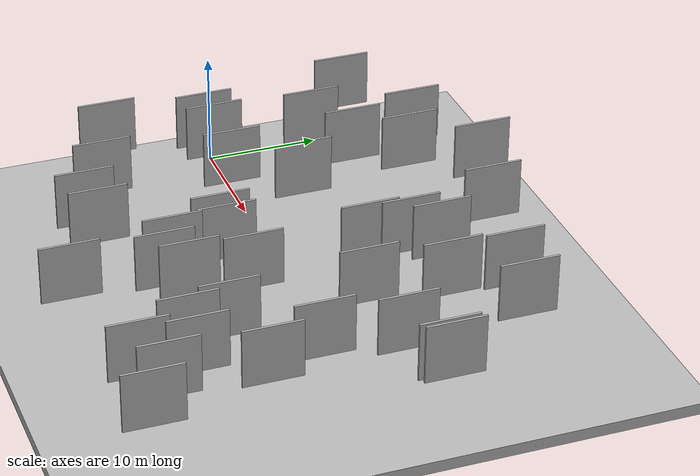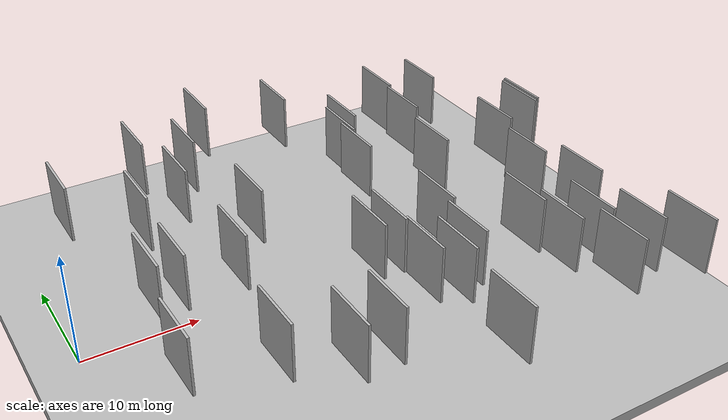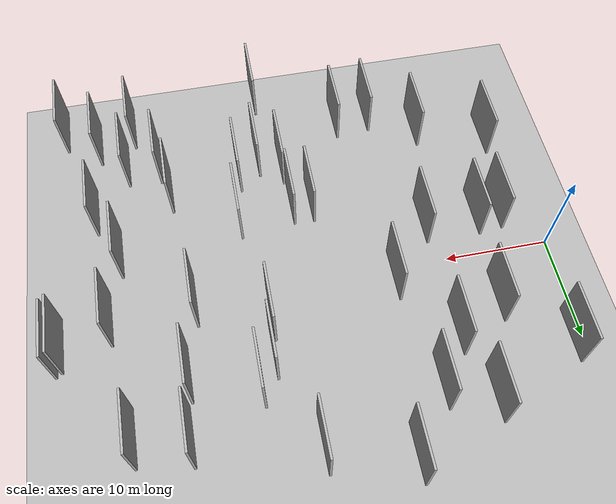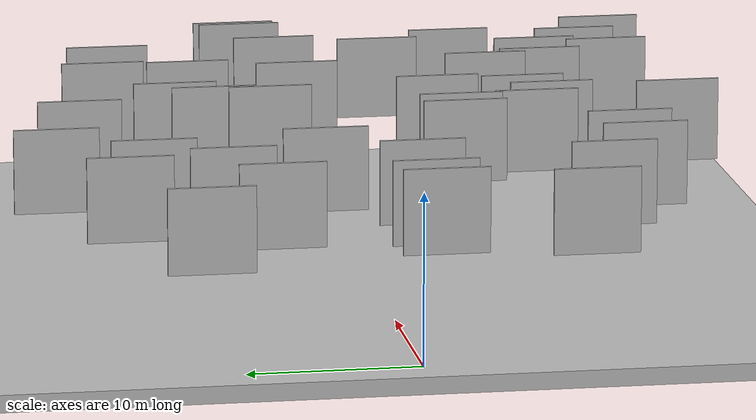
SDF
<?xml version="1.0" encoding="utf-8"?>

<sdf version="1.6">

   <world name="default">

      <gui fullscreen="0">

         <camera name="user_camera">

            <pose>-15 0 4.57585 0 0 0</pose>

            <view_controller>orbit</view_controller>

         </camera>

      </gui>

      <scene>

         <sky>

           <clouds>

             <speed>12</speed>

           </clouds>

         </sky>

         <ambient>0.4 0.4 0.4 1</ambient>

         <background>0.7 0.7 0.7 1</background>

         <shadows>1</shadows>

      </scene>

      <gravity>0 0 -9.8066</gravity>

      <magnetic_field>6e-06 2.3e-05 -4.2e-05</magnetic_field>

      <physics default="0" name="default_physics" type="ode">

         <ode>

            <solver>

               <type>quick</type>

               <iters>10</iters>

               <sor>1.0</sor>

               <use_dynamic_moi_rescaling>0</use_dynamic_moi_rescaling>

            </solver>

            <constraints>

               <cfm>0</cfm>

               <erp>0.2</erp>

               <contact_max_correcting_vel>100</contact_max_correcting_vel>

               <contact_surface_layer>0.001</contact_surface_layer>

            </constraints>

         </ode>

         <max_step_size>0.004</max_step_size>

         <real_time_factor>1</real_time_factor>

         <real_time_update_rate>250</real_time_update_rate>

      </physics>

      <light name="sun" type="directional">

         <cast_shadows>1</cast_shadows>

         <pose>0 0 10 0 0 0</pose>

         <diffuse>0.8 0.8 0.8 1</diffuse>

         <specular>0.2 0.2 0.2 1</specular>

         <attenuation>

            <range>1000</range>

            <constant>0.9</constant>

            <linear>0.01</linear>

            <quadratic>0.001</quadratic>

         </attenuation>

         <direction>-0.5 0.1 -0.9</direction>

      </light>

      <include>

         <name>ground_plane_1</name>

         <uri>model://HANNAS_ground_plane</uri>

         <pose>0 0 0  0 0 0</pose>

      </include>

      <include>

         <name>ground_plane_2</name>

         <uri>model://HANNAS_ground_plane</uri>

         <pose>100 0 0  0 0 0</pose>

      </include>

      <model name="HANNAS_wall_1">

         <static>1</static>

         <pose frame="">15.0200 13.2710 5.0 0.000000 0.000000 1.570796</pose>

         <link name="link">

            <pose frame="">0 0 2.50 0 0 0</pose>

            <collision name="collision">

               <geometry>

                  <box>

                     <size>5.00 0.2 5.00</size>

                  </box>

               </geometry>

               <max_contacts>10</max_contacts>

               <surface>

                  <contact>

                     <ode/>

                  </contact>

                  <bounce/>

                  <friction>

                     <torsional>

                        <ode/>

                     </torsional>

                     <ode/>

                  </friction>

               </surface>

            </collision>

            <visual name="visual">

               <cast_shadows>0</cast_shadows>

               <geometry>

                  <box>

                     <size>5.00 0.2 5.00</size>

                  </box>

               </geometry>

               <material>

                  <script>

                     <uri>model://HANNAS_wall/materials/scripts</uri>

                     <uri>model://HANNAS_wall/materials/textures</uri>

                     <name>vrc/HANNAS_wall</name>

                  </script>

               </material>

            </visual>

            <self_collide>0</self_collide>

            <enable_wind>0</enable_wind>

            <kinematic>0</kinematic>

         </link>

      </model>

      <model name="HANNAS_wall_2">

         <static>1</static>

         <pose frame="">25.7129 -19.7022 5.0 0.000000 0.000000 1.570796</pose>

         <link name="link">

            <pose frame="">0 0 2.50 0 0 0</pose>

            <collision name="collision">

               <geometry>

                  <box>

                     <size>5.00 0.2 5.00</size>

                  </box>

               </geometry>

               <max_contacts>10</max_contacts>

               <surface>

                  <contact>

                     <ode/>

                  </contact>

                  <bounce/>

                  <friction>

                     <torsional>

                        <ode/>

                     </torsional>

                     <ode/>

                  </friction>

               </surface>

            </collision>

            <visual name="visual">

               <cast_shadows>0</cast_shadows>

               <geometry>

                  <box>

                     <size>5.00 0.2 5.00</size>

                  </box>

               </geometry>

               <material>

                  <script>

                     <uri>model://HANNAS_wall/materials/scripts</uri>

                     <uri>model://HANNAS_wall/materials/textures</uri>

                     <name>vrc/HANNAS_wall</name>

                  </script>

               </material>

            </visual>

            <self_collide>0</self_collide>

            <enable_wind>0</enable_wind>

            <kinematic>0</kinematic>

         </link>

      </model>

      <model name="HANNAS_wall_3">

         <static>1</static>

         <pose frame="">35.5512 14.0241 5.0 0.000000 0.000000 1.570796</pose>

         <link name="link">

            <pose frame="">0 0 2.50 0 0 0</pose>

            <collision name="collision">

               <geometry>

                  <box>

                     <size>5.00 0.2 5.00</size>

                  </box>

               </geometry>

               <max_contacts>10</max_contacts>

               <surface>

                  <contact>

                     <ode/>

                  </contact>

                  <bounce/>

                  <friction>

                     <torsional>

                        <ode/>

                     </torsional>

                     <ode/>

                  </friction>

               </surface>

            </collision>

            <visual name="visual">

               <cast_shadows>0</cast_shadows>

               <geometry>

                  <box>

                     <size>5.00 0.2 5.00</size>

                  </box>

               </geometry>

               <material>

                  <script>

                     <uri>model://HANNAS_wall/materials/scripts</uri>

                     <uri>model://HANNAS_wall/materials/textures</uri>

                     <name>vrc/HANNAS_wall</name>

                  </script>

               </material>

            </visual>

            <self_collide>0</self_collide>

            <enable_wind>0</enable_wind>

            <kinematic>0</kinematic>

         </link>

      </model>

      <model name="HANNAS_wall_4">

         <static>1</static>

         <pose frame="">12.6788 -2.0079 5.0 0.000000 0.000000 1.570796</pose>

         <link name="link">

            <pose frame="">0 0 2.50 0 0 0</pose>

            <collision name="collision">

               <geometry>

                  <box>

                     <size>5.00 0.2 5.00</size>

                  </box>

               </geometry>

               <max_contacts>10</max_contacts>

               <surface>

                  <contact>

                     <ode/>

                  </contact>

                  <bounce/>

                  <friction>

                     <torsional>

                        <ode/>

                     </torsional>

                     <ode/>

                  </friction>

               </surface>

            </collision>

            <visual name="visual">

               <cast_shadows>0</cast_shadows>

               <geometry>

                  <box>

                     <size>5.00 0.2 5.00</size>

                  </box>

               </geometry>

               <material>

                  <script>

                     <uri>model://HANNAS_wall/materials/scripts</uri>

                     <uri>model://HANNAS_wall/materials/textures</uri>

                     <name>vrc/HANNAS_wall</name>

                  </script>

               </material>

            </visual>

            <self_collide>0</self_collide>

            <enable_wind>0</enable_wind>

            <kinematic>0</kinematic>

         </link>

      </model>

      <model name="HANNAS_wall_5">

         <static>1</static>

         <pose frame="">41.1609 -16.2983 5.0 0.000000 0.000000 1.570796</pose>

         <link name="link">

            <pose frame="">0 0 2.50 0 0 0</pose>

            <collision name="collision">

               <geometry>

                  <box>

                     <size>5.00 0.2 5.00</size>

                  </box>

               </geometry>

               <max_contacts>10</max_contacts>

               <surface>

                  <contact>

                     <ode/>

                  </contact>

                  <bounce/>

                  <friction>

                     <torsional>

                        <ode/>

                     </torsional>

                     <ode/>

                  </friction>

               </surface>

            </collision>

            <visual name="visual">

               <cast_shadows>0</cast_shadows>

               <geometry>

                  <box>

                     <size>5.00 0.2 5.00</size>

                  </box>

               </geometry>

               <material>

                  <script>

                     <uri>model://HANNAS_wall/materials/scripts</uri>

                     <uri>model://HANNAS_wall/materials/textures</uri>

                     <name>vrc/HANNAS_wall</name>

                  </script>

               </material>

            </visual>

            <self_collide>0</self_collide>

            <enable_wind>0</enable_wind>

            <kinematic>0</kinematic>

         </link>

      </model>

      <model name="HANNAS_wall_6">

         <static>1</static>

         <pose frame="">24.3441 -10.8543 5.0 0.000000 0.000000 1.570796</pose>

         <link name="link">

            <pose frame="">0 0 2.50 0 0 0</pose>

            <collision name="collision">

               <geometry>

                  <box>

                     <size>5.00 0.2 5.00</size>

                  </box>

               </geometry>

               <max_contacts>10</max_contacts>

               <surface>

                  <contact>

                     <ode/>

                  </contact>

                  <bounce/>

                  <friction>

                     <torsional>

                        <ode/>

                     </torsional>

                     <ode/>

                  </friction>

               </surface>

            </collision>

            <visual name="visual">

               <cast_shadows>0</cast_shadows>

               <geometry>

                  <box>

                     <size>5.00 0.2 5.00</size>

                  </box>

               </geometry>

               <material>

                  <script>

                     <uri>model://HANNAS_wall/materials/scripts</uri>

                     <uri>model://HANNAS_wall/materials/textures</uri>

                     <name>vrc/HANNAS_wall</name>

                  </script>

               </material>

            </visual>

            <self_collide>0</self_collide>

            <enable_wind>0</enable_wind>

            <kinematic>0</kinematic>

         </link>

      </model>

      <model name="HANNAS_wall_7">

         <static>1</static>

         <pose frame="">7.7617 -1.9902 5.0 0.000000 0.000000 1.570796</pose>

         <link name="link">

            <pose frame="">0 0 2.50 0 0 0</pose>

            <collision name="collision">

               <geometry>

                  <box>

                     <size>5.00 0.2 5.00</size>

                  </box>

               </geometry>

               <max_contacts>10</max_contacts>

               <surface>

                  <contact>

                     <ode/>

                  </contact>

                  <bounce/>

                  <friction>

                     <torsional>

                        <ode/>

                     </torsional>

                     <ode/>

                  </friction>

               </surface>

            </collision>

            <visual name="visual">

               <cast_shadows>0</cast_shadows>

               <geometry>

                  <box>

                     <size>5.00 0.2 5.00</size>

                  </box>

               </geometry>

               <material>

                  <script>

                     <uri>model://HANNAS_wall/materials/scripts</uri>

                     <uri>model://HANNAS_wall/materials/textures</uri>

                     <name>vrc/HANNAS_wall</name>

                  </script>

               </material>

            </visual>

            <self_collide>0</self_collide>

            <enable_wind>0</enable_wind>

            <kinematic>0</kinematic>

         </link>

      </model>

      <model name="HANNAS_wall_8">

         <static>1</static>

         <pose frame="">4.3704 -10.6522 5.0 0.000000 0.000000 1.570796</pose>

         <link name="link">

            <pose frame="">0 0 2.50 0 0 0</pose>

            <collision name="collision">

               <geometry>

                  <box>

                     <size>5.00 0.2 5.00</size>

                  </box>

               </geometry>

               <max_contacts>10</max_contacts>

               <surface>

                  <contact>

                     <ode/>

                  </contact>

                  <bounce/>

                  <friction>

                     <torsional>

                        <ode/>

                     </torsional>

                     <ode/>

                  </friction>

               </surface>

            </collision>

            <visual name="visual">

               <cast_shadows>0</cast_shadows>

               <geometry>

                  <box>

                     <size>5.00 0.2 5.00</size>

                  </box>

               </geometry>

               <material>

                  <script>

                     <uri>model://HANNAS_wall/materials/scripts</uri>

                     <uri>model://HANNAS_wall/materials/textures</uri>

                     <name>vrc/HANNAS_wall</name>

                  </script>

               </material>

            </visual>

            <self_collide>0</self_collide>

            <enable_wind>0</enable_wind>

            <kinematic>0</kinematic>

         </link>

      </model>

      <model name="HANNAS_wall_9">

         <static>1</static>

         <pose frame="">24.1307 -6.2317 5.0 0.000000 0.000000 1.570796</pose>

         <link name="link">

            <pose frame="">0 0 2.50 0 0 0</pose>

            <collision name="collision">

               <geometry>

                  <box>

                     <size>5.00 0.2 5.00</size>

                  </box>

               </geometry>

               <max_contacts>10</max_contacts>

               <surface>

                  <contact>

                     <ode/>

                  </contact>

                  <bounce/>

                  <friction>

                     <torsional>

                        <ode/>

                     </torsional>

                     <ode/>

                  </friction>

               </surface>

            </collision>

            <visual name="visual">

               <cast_shadows>0</cast_shadows>

               <geometry>

                  <box>

                     <size>5.00 0.2 5.00</size>

                  </box>

               </geometry>

               <material>

                  <script>

                     <uri>model://HANNAS_wall/materials/scripts</uri>

                     <uri>model://HANNAS_wall/materials/textures</uri>

                     <name>vrc/HANNAS_wall</name>

                  </script>

               </material>

            </visual>

            <self_collide>0</self_collide>

            <enable_wind>0</enable_wind>

            <kinematic>0</kinematic>

         </link>

      </model>

      <model name="HANNAS_wall_10">

         <static>1</static>

         <pose frame="">28.4022 -10.7105 5.0 0.000000 0.000000 1.570796</pose>

         <link name="link">

            <pose frame="">0 0 2.50 0 0 0</pose>

            <collision name="collision">

               <geometry>

                  <box>

                     <size>5.00 0.2 5.00</size>

                  </box>

               </geometry>

               <max_contacts>10</max_contacts>

               <surface>

                  <contact>

                     <ode/>

                  </contact>

                  <bounce/>

                  <friction>

                     <torsional>

                        <ode/>

                     </torsional>

                     <ode/>

                  </friction>

               </surface>

            </collision>

            <visual name="visual">

               <cast_shadows>0</cast_shadows>

               <geometry>

                  <box>

                     <size>5.00 0.2 5.00</size>

                  </box>

               </geometry>

               <material>

                  <script>

                     <uri>model://HANNAS_wall/materials/scripts</uri>

                     <uri>model://HANNAS_wall/materials/textures</uri>

                     <name>vrc/HANNAS_wall</name>

                  </script>

               </material>

            </visual>

            <self_collide>0</self_collide>

            <enable_wind>0</enable_wind>

            <kinematic>0</kinematic>

         </link>

      </model>

      <model name="HANNAS_wall_11">

         <static>1</static>

         <pose frame="">41.2735 2.6994 5.0 0.000000 0.000000 1.570796</pose>

         <link name="link">

            <pose frame="">0 0 2.50 0 0 0</pose>

            <collision name="collision">

               <geometry>

                  <box>

                     <size>5.00 0.2 5.00</size>

                  </box>

               </geometry>

               <max_contacts>10</max_contacts>

               <surface>

                  <contact>

                     <ode/>

                  </contact>

                  <bounce/>

                  <friction>

                     <torsional>

                        <ode/>

                     </torsional>

                     <ode/>

                  </friction>

               </surface>

            </collision>

            <visual name="visual">

               <cast_shadows>0</cast_shadows>

               <geometry>

                  <box>

                     <size>5.00 0.2 5.00</size>

                  </box>

               </geometry>

               <material>

                  <script>

                     <uri>model://HANNAS_wall/materials/scripts</uri>

                     <uri>model://HANNAS_wall/materials/textures</uri>

                     <name>vrc/HANNAS_wall</name>

                  </script>

               </material>

            </visual>

            <self_collide>0</self_collide>

            <enable_wind>0</enable_wind>

            <kinematic>0</kinematic>

         </link>

      </model>

      <model name="HANNAS_wall_12">

         <static>1</static>

         <pose frame="">38.7048 -13.2857 5.0 0.000000 0.000000 1.570796</pose>

         <link name="link">

            <pose frame="">0 0 2.50 0 0 0</pose>

            <collision name="collision">

               <geometry>

                  <box>

                     <size>5.00 0.2 5.00</size>

                  </box>

               </geometry>

               <max_contacts>10</max_contacts>

               <surface>

                  <contact>

                     <ode/>

                  </contact>

                  <bounce/>

                  <friction>

                     <torsional>

                        <ode/>

                     </torsional>

                     <ode/>

                  </friction>

               </surface>

            </collision>

            <visual name="visual">

               <cast_shadows>0</cast_shadows>

               <geometry>

                  <box>

                     <size>5.00 0.2 5.00</size>

                  </box>

               </geometry>

               <material>

                  <script>

                     <uri>model://HANNAS_wall/materials/scripts</uri>

                     <uri>model://HANNAS_wall/materials/textures</uri>

                     <name>vrc/HANNAS_wall</name>

                  </script>

               </material>

            </visual>

            <self_collide>0</self_collide>

            <enable_wind>0</enable_wind>

            <kinematic>0</kinematic>

         </link>

      </model>

      <model name="HANNAS_wall_13">

         <static>1</static>

         <pose frame="">16.5014 3.0628 5.0 0.000000 0.000000 1.570796</pose>

         <link name="link">

            <pose frame="">0 0 2.50 0 0 0</pose>

            <collision name="collision">

               <geometry>

                  <box>

                     <size>5.00 0.2 5.00</size>

                  </box>

               </geometry>

               <max_contacts>10</max_contacts>

               <surface>

                  <contact>

                     <ode/>

                  </contact>

                  <bounce/>

                  <friction>

                     <torsional>

                        <ode/>

                     </torsional>

                     <ode/>

                  </friction>

               </surface>

            </collision>

            <visual name="visual">

               <cast_shadows>0</cast_shadows>

               <geometry>

                  <box>

                     <size>5.00 0.2 5.00</size>

                  </box>

               </geometry>

               <material>

                  <script>

                     <uri>model://HANNAS_wall/materials/scripts</uri>

                     <uri>model://HANNAS_wall/materials/textures</uri>

                     <name>vrc/HANNAS_wall</name>

                  </script>

               </material>

            </visual>

            <self_collide>0</self_collide>

            <enable_wind>0</enable_wind>

            <kinematic>0</kinematic>

         </link>

      </model>

      <model name="HANNAS_wall_14">

         <static>1</static>

         <pose frame="">8.2318 6.7334 5.0 0.000000 0.000000 1.570796</pose>

         <link name="link">

            <pose frame="">0 0 2.50 0 0 0</pose>

            <collision name="collision">

               <geometry>

                  <box>

                     <size>5.00 0.2 5.00</size>

                  </box>

               </geometry>

               <max_contacts>10</max_contacts>

               <surface>

                  <contact>

                     <ode/>

                  </contact>

                  <bounce/>

                  <friction>

                     <torsional>

                        <ode/>

                     </torsional>

                     <ode/>

                  </friction>

               </surface>

            </collision>

            <visual name="visual">

               <cast_shadows>0</cast_shadows>

               <geometry>

                  <box>

                     <size>5.00 0.2 5.00</size>

                  </box>

               </geometry>

               <material>

                  <script>

                     <uri>model://HANNAS_wall/materials/scripts</uri>

                     <uri>model://HANNAS_wall/materials/textures</uri>

                     <name>vrc/HANNAS_wall</name>

                  </script>

               </material>

            </visual>

            <self_collide>0</self_collide>

            <enable_wind>0</enable_wind>

            <kinematic>0</kinematic>

         </link>

      </model>

      <model name="HANNAS_wall_15">

         <static>1</static>

         <pose frame="">10.7638 -12.8819 5.0 0.000000 0.000000 1.570796</pose>

         <link name="link">

            <pose frame="">0 0 2.50 0 0 0</pose>

            <collision name="collision">

               <geometry>

                  <box>

                     <size>5.00 0.2 5.00</size>

                  </box>

               </geometry>

               <max_contacts>10</max_contacts>

               <surface>

                  <contact>

                     <ode/>

                  </contact>

                  <bounce/>

                  <friction>

                     <torsional>

                        <ode/>

                     </torsional>

                     <ode/>

                  </friction>

               </surface>

            </collision>

            <visual name="visual">

               <cast_shadows>0</cast_shadows>

               <geometry>

                  <box>

                     <size>5.00 0.2 5.00</size>

                  </box>

               </geometry>

               <material>

                  <script>

                     <uri>model://HANNAS_wall/materials/scripts</uri>

                     <uri>model://HANNAS_wall/materials/textures</uri>

                     <name>vrc/HANNAS_wall</name>

                  </script>

               </material>

            </visual>

            <self_collide>0</self_collide>

            <enable_wind>0</enable_wind>

            <kinematic>0</kinematic>

         </link>

      </model>

      <model name="HANNAS_wall_16">

         <static>1</static>

         <pose frame="">37.8389 -17.7009 5.0 0.000000 0.000000 1.570796</pose>

         <link name="link">

            <pose frame="">0 0 2.50 0 0 0</pose>

            <collision name="collision">

               <geometry>

                  <box>

                     <size>5.00 0.2 5.00</size>

                  </box>

               </geometry>

               <max_contacts>10</max_contacts>

               <surface>

                  <contact>

                     <ode/>

                  </contact>

                  <bounce/>

                  <friction>

                     <torsional>

                        <ode/>

                     </torsional>

                     <ode/>

                  </friction>

               </surface>

            </collision>

            <visual name="visual">

               <cast_shadows>0</cast_shadows>

               <geometry>

                  <box>

                     <size>5.00 0.2 5.00</size>

                  </box>

               </geometry>

               <material>

                  <script>

                     <uri>model://HANNAS_wall/materials/scripts</uri>

                     <uri>model://HANNAS_wall/materials/textures</uri>

                     <name>vrc/HANNAS_wall</name>

                  </script>

               </material>

            </visual>

            <self_collide>0</self_collide>

            <enable_wind>0</enable_wind>

            <kinematic>0</kinematic>

         </link>

      </model>

      <model name="HANNAS_wall_17">

         <static>1</static>

         <pose frame="">28.0800 8.1672 5.0 0.000000 0.000000 1.570796</pose>

         <link name="link">

            <pose frame="">0 0 2.50 0 0 0</pose>

            <collision name="collision">

               <geometry>

                  <box>

                     <size>5.00 0.2 5.00</size>

                  </box>

               </geometry>

               <max_contacts>10</max_contacts>

               <surface>

                  <contact>

                     <ode/>

                  </contact>

                  <bounce/>

                  <friction>

                     <torsional>

                        <ode/>

                     </torsional>

                     <ode/>

                  </friction>

               </surface>

            </collision>

            <visual name="visual">

               <cast_shadows>0</cast_shadows>

               <geometry>

                  <box>

                     <size>5.00 0.2 5.00</size>

                  </box>

               </geometry>

               <material>

                  <script>

                     <uri>model://HANNAS_wall/materials/scripts</uri>

                     <uri>model://HANNAS_wall/materials/textures</uri>

                     <name>vrc/HANNAS_wall</name>

                  </script>

               </material>

            </visual>

            <self_collide>0</self_collide>

            <enable_wind>0</enable_wind>

            <kinematic>0</kinematic>

         </link>

      </model>

      <model name="HANNAS_wall_18">

         <static>1</static>

         <pose frame="">41.8763 -8.4207 5.0 0.000000 0.000000 1.570796</pose>

         <link name="link">

            <pose frame="">0 0 2.50 0 0 0</pose>

            <collision name="collision">

               <geometry>

                  <box>

                     <size>5.00 0.2 5.00</size>

                  </box>

               </geometry>

               <max_contacts>10</max_contacts>

               <surface>

                  <contact>

                     <ode/>

                  </contact>

                  <bounce/>

                  <friction>

                     <torsional>

                        <ode/>

                     </torsional>

                     <ode/>

                  </friction>

               </surface>

            </collision>

            <visual name="visual">

               <cast_shadows>0</cast_shadows>

               <geometry>

                  <box>

                     <size>5.00 0.2 5.00</size>

                  </box>

               </geometry>

               <material>

                  <script>

                     <uri>model://HANNAS_wall/materials/scripts</uri>

                     <uri>model://HANNAS_wall/materials/textures</uri>

                     <name>vrc/HANNAS_wall</name>

                  </script>

               </material>

            </visual>

            <self_collide>0</self_collide>

            <enable_wind>0</enable_wind>

            <kinematic>0</kinematic>

         </link>

      </model>

      <model name="HANNAS_wall_19">

         <static>1</static>

         <pose frame="">39.9761 -3.6024 5.0 0.000000 0.000000 1.570796</pose>

         <link name="link">

            <pose frame="">0 0 2.50 0 0 0</pose>

            <collision name="collision">

               <geometry>

                  <box>

                     <size>5.00 0.2 5.00</size>

                  </box>

               </geometry>

               <max_contacts>10</max_contacts>

               <surface>

                  <contact>

                     <ode/>

                  </contact>

                  <bounce/>

                  <friction>

                     <torsional>

                        <ode/>

                     </torsional>

                     <ode/>

                  </friction>

               </surface>

            </collision>

            <visual name="visual">

               <cast_shadows>0</cast_shadows>

               <geometry>

                  <box>

                     <size>5.00 0.2 5.00</size>

                  </box>

               </geometry>

               <material>

                  <script>

                     <uri>model://HANNAS_wall/materials/scripts</uri>

                     <uri>model://HANNAS_wall/materials/textures</uri>

                     <name>vrc/HANNAS_wall</name>

                  </script>

               </material>

            </visual>

            <self_collide>0</self_collide>

            <enable_wind>0</enable_wind>

            <kinematic>0</kinematic>

         </link>

      </model>

      <model name="HANNAS_wall_20">

         <static>1</static>

         <pose frame="">45.9135 4.6547 5.0 0.000000 0.000000 1.570796</pose>

         <link name="link">

            <pose frame="">0 0 2.50 0 0 0</pose>

            <collision name="collision">

               <geometry>

                  <box>

                     <size>5.00 0.2 5.00</size>

                  </box>

               </geometry>

               <max_contacts>10</max_contacts>

               <surface>

                  <contact>

                     <ode/>

                  </contact>

                  <bounce/>

                  <friction>

                     <torsional>

                        <ode/>

                     </torsional>

                     <ode/>

                  </friction>

               </surface>

            </collision>

            <visual name="visual">

               <cast_shadows>0</cast_shadows>

               <geometry>

                  <box>

                     <size>5.00 0.2 5.00</size>

                  </box>

               </geometry>

               <material>

                  <script>

                     <uri>model://HANNAS_wall/materials/scripts</uri>

                     <uri>model://HANNAS_wall/materials/textures</uri>

                     <name>vrc/HANNAS_wall</name>

                  </script>

               </material>

            </visual>

            <self_collide>0</self_collide>

            <enable_wind>0</enable_wind>

            <kinematic>0</kinematic>

         </link>

      </model>

      <model name="HANNAS_wall_21">

         <static>1</static>

         <pose frame="">44.2862 -18.4485 5.0 0.000000 0.000000 1.570796</pose>

         <link name="link">

            <pose frame="">0 0 2.50 0 0 0</pose>

            <collision name="collision">

               <geometry>

                  <box>

                     <size>5.00 0.2 5.00</size>

                  </box>

               </geometry>

               <max_contacts>10</max_contacts>

               <surface>

                  <contact>

                     <ode/>

                  </contact>

                  <bounce/>

                  <friction>

                     <torsional>

                        <ode/>

                     </torsional>

                     <ode/>

                  </friction>

               </surface>

            </collision>

            <visual name="visual">

               <cast_shadows>0</cast_shadows>

               <geometry>

                  <box>

                     <size>5.00 0.2 5.00</size>

                  </box>

               </geometry>

               <material>

                  <script>

                     <uri>model://HANNAS_wall/materials/scripts</uri>

                     <uri>model://HANNAS_wall/materials/textures</uri>

                     <name>vrc/HANNAS_wall</name>

                  </script>

               </material>

            </visual>

            <self_collide>0</self_collide>

            <enable_wind>0</enable_wind>

            <kinematic>0</kinematic>

         </link>

      </model>

      <model name="HANNAS_wall_22">

         <static>1</static>

         <pose frame="">11.0093 15.1002 5.0 0.000000 0.000000 1.570796</pose>

         <link name="link">

            <pose frame="">0 0 2.50 0 0 0</pose>

            <collision name="collision">

               <geometry>

                  <box>

                     <size>5.00 0.2 5.00</size>

                  </box>

               </geometry>

               <max_contacts>10</max_contacts>

               <surface>

                  <contact>

                     <ode/>

                  </contact>

                  <bounce/>

                  <friction>

                     <torsional>

                        <ode/>

                     </torsional>

                     <ode/>

                  </friction>

               </surface>

            </collision>

            <visual name="visual">

               <cast_shadows>0</cast_shadows>

               <geometry>

                  <box>

                     <size>5.00 0.2 5.00</size>

                  </box>

               </geometry>

               <material>

                  <script>

                     <uri>model://HANNAS_wall/materials/scripts</uri>

                     <uri>model://HANNAS_wall/materials/textures</uri>

                     <name>vrc/HANNAS_wall</name>

                  </script>

               </material>

            </visual>

            <self_collide>0</self_collide>

            <enable_wind>0</enable_wind>

            <kinematic>0</kinematic>

         </link>

      </model>

      <model name="HANNAS_wall_23">

         <static>1</static>

         <pose frame="">29.4523 10.3099 5.0 0.000000 0.000000 1.570796</pose>

         <link name="link">

            <pose frame="">0 0 2.50 0 0 0</pose>

            <collision name="collision">

               <geometry>

                  <box>

                     <size>5.00 0.2 5.00</size>

                  </box>

               </geometry>

               <max_contacts>10</max_contacts>

               <surface>

                  <contact>

                     <ode/>

                  </contact>

                  <bounce/>

                  <friction>

                     <torsional>

                        <ode/>

                     </torsional>

                     <ode/>

                  </friction>

               </surface>

            </collision>

            <visual name="visual">

               <cast_shadows>0</cast_shadows>

               <geometry>

                  <box>

                     <size>5.00 0.2 5.00</size>

                  </box>

               </geometry>

               <material>

                  <script>

                     <uri>model://HANNAS_wall/materials/scripts</uri>

                     <uri>model://HANNAS_wall/materials/textures</uri>

                     <name>vrc/HANNAS_wall</name>

                  </script>

               </material>

            </visual>

            <self_collide>0</self_collide>

            <enable_wind>0</enable_wind>

            <kinematic>0</kinematic>

         </link>

      </model>

      <model name="HANNAS_wall_24">

         <static>1</static>

         <pose frame="">26.4315 -12.1365 5.0 0.000000 0.000000 1.570796</pose>

         <link name="link">

            <pose frame="">0 0 2.50 0 0 0</pose>

            <collision name="collision">

               <geometry>

                  <box>

                     <size>5.00 0.2 5.00</size>

                  </box>

               </geometry>

               <max_contacts>10</max_contacts>

               <surface>

                  <contact>

                     <ode/>

                  </contact>

                  <bounce/>

                  <friction>

                     <torsional>

                        <ode/>

                     </torsional>

                     <ode/>

                  </friction>

               </surface>

            </collision>

            <visual name="visual">

               <cast_shadows>0</cast_shadows>

               <geometry>

                  <box>

                     <size>5.00 0.2 5.00</size>

                  </box>

               </geometry>

               <material>

                  <script>

                     <uri>model://HANNAS_wall/materials/scripts</uri>

                     <uri>model://HANNAS_wall/materials/textures</uri>

                     <name>vrc/HANNAS_wall</name>

                  </script>

               </material>

            </visual>

            <self_collide>0</self_collide>

            <enable_wind>0</enable_wind>

            <kinematic>0</kinematic>

         </link>

      </model>

      <model name="HANNAS_wall_25">

         <static>1</static>

         <pose frame="">35.7075 -13.1098 5.0 0.000000 0.000000 1.570796</pose>

         <link name="link">

            <pose frame="">0 0 2.50 0 0 0</pose>

            <collision name="collision">

               <geometry>

                  <box>

                     <size>5.00 0.2 5.00</size>

                  </box>

               </geometry>

               <max_contacts>10</max_contacts>

               <surface>

                  <contact>

                     <ode/>

                  </contact>

                  <bounce/>

                  <friction>

                     <torsional>

                        <ode/>

                     </torsional>

                     <ode/>

                  </friction>

               </surface>

            </collision>

            <visual name="visual">

               <cast_shadows>0</cast_shadows>

               <geometry>

                  <box>

                     <size>5.00 0.2 5.00</size>

                  </box>

               </geometry>

               <material>

                  <script>

                     <uri>model://HANNAS_wall/materials/scripts</uri>

                     <uri>model://HANNAS_wall/materials/textures</uri>

                     <name>vrc/HANNAS_wall</name>

                  </script>

               </material>

            </visual>

            <self_collide>0</self_collide>

            <enable_wind>0</enable_wind>

            <kinematic>0</kinematic>

         </link>

      </model>

      <model name="HANNAS_wall_26">

         <static>1</static>

         <pose frame="">40.0470 13.2609 5.0 0.000000 0.000000 1.570796</pose>

         <link name="link">

            <pose frame="">0 0 2.50 0 0 0</pose>

            <collision name="collision">

               <geometry>

                  <box>

                     <size>5.00 0.2 5.00</size>

                  </box>

               </geometry>

               <max_contacts>10</max_contacts>

               <surface>

                  <contact>

                     <ode/>

                  </contact>

                  <bounce/>

                  <friction>

                     <torsional>

                        <ode/>

                     </torsional>

                     <ode/>

                  </friction>

               </surface>

            </collision>

            <visual name="visual">

               <cast_shadows>0</cast_shadows>

               <geometry>

                  <box>

                     <size>5.00 0.2 5.00</size>

                  </box>

               </geometry>

               <material>

                  <script>

                     <uri>model://HANNAS_wall/materials/scripts</uri>

                     <uri>model://HANNAS_wall/materials/textures</uri>

                     <name>vrc/HANNAS_wall</name>

                  </script>

               </material>

            </visual>

            <self_collide>0</self_collide>

            <enable_wind>0</enable_wind>

            <kinematic>0</kinematic>

         </link>

      </model>

      <model name="HANNAS_wall_27">

         <static>1</static>

         <pose frame="">35.2092 8.8485 5.0 0.000000 0.000000 1.570796</pose>

         <link name="link">

            <pose frame="">0 0 2.50 0 0 0</pose>

            <collision name="collision">

               <geometry>

                  <box>

                     <size>5.00 0.2 5.00</size>

                  </box>

               </geometry>

               <max_contacts>10</max_contacts>

               <surface>

                  <contact>

                     <ode/>

                  </contact>

                  <bounce/>

                  <friction>

                     <torsional>

                        <ode/>

                     </torsional>

                     <ode/>

                  </friction>

               </surface>

            </collision>

            <visual name="visual">

               <cast_shadows>0</cast_shadows>

               <geometry>

                  <box>

                     <size>5.00 0.2 5.00</size>

                  </box>

               </geometry>

               <material>

                  <script>

                     <uri>model://HANNAS_wall/materials/scripts</uri>

                     <uri>model://HANNAS_wall/materials/textures</uri>

                     <name>vrc/HANNAS_wall</name>

                  </script>

               </material>

            </visual>

            <self_collide>0</self_collide>

            <enable_wind>0</enable_wind>

            <kinematic>0</kinematic>

         </link>

      </model>

      <model name="HANNAS_wall_28">

         <static>1</static>

         <pose frame="">25.4914 16.4885 5.0 0.000000 0.000000 1.570796</pose>

         <link name="link">

            <pose frame="">0 0 2.50 0 0 0</pose>

            <collision name="collision">

               <geometry>

                  <box>

                     <size>5.00 0.2 5.00</size>

                  </box>

               </geometry>

               <max_contacts>10</max_contacts>

               <surface>

                  <contact>

                     <ode/>

                  </contact>

                  <bounce/>

                  <friction>

                     <torsional>

                        <ode/>

                     </torsional>

                     <ode/>

                  </friction>

               </surface>

            </collision>

            <visual name="visual">

               <cast_shadows>0</cast_shadows>

               <geometry>

                  <box>

                     <size>5.00 0.2 5.00</size>

                  </box>

               </geometry>

               <material>

                  <script>

                     <uri>model://HANNAS_wall/materials/scripts</uri>

                     <uri>model://HANNAS_wall/materials/textures</uri>

                     <name>vrc/HANNAS_wall</name>

                  </script>

               </material>

            </visual>

            <self_collide>0</self_collide>

            <enable_wind>0</enable_wind>

            <kinematic>0</kinematic>

         </link>

      </model>

      <model name="HANNAS_wall_29">

         <static>1</static>

         <pose frame="">15.0784 -15.5705 5.0 0.000000 0.000000 1.570796</pose>

         <link name="link">

            <pose frame="">0 0 2.50 0 0 0</pose>

            <collision name="collision">

               <geometry>

                  <box>

                     <size>5.00 0.2 5.00</size>

                  </box>

               </geometry>

               <max_contacts>10</max_contacts>

               <surface>

                  <contact>

                     <ode/>

                  </contact>

                  <bounce/>

                  <friction>

                     <torsional>

                        <ode/>

                     </torsional>

                     <ode/>

                  </friction>

               </surface>

            </collision>

            <visual name="visual">

               <cast_shadows>0</cast_shadows>

               <geometry>

                  <box>

                     <size>5.00 0.2 5.00</size>

                  </box>

               </geometry>

               <material>

                  <script>

                     <uri>model://HANNAS_wall/materials/scripts</uri>

                     <uri>model://HANNAS_wall/materials/textures</uri>

                     <name>vrc/HANNAS_wall</name>

                  </script>

               </material>

            </visual>

            <self_collide>0</self_collide>

            <enable_wind>0</enable_wind>

            <kinematic>0</kinematic>

         </link>

      </model>

      <model name="HANNAS_wall_30">

         <static>1</static>

         <pose frame="">18.2406 -15.2876 5.0 0.000000 0.000000 1.570796</pose>

         <link name="link">

            <pose frame="">0 0 2.50 0 0 0</pose>

            <collision name="collision">

               <geometry>

                  <box>

                     <size>5.00 0.2 5.00</size>

                  </box>

               </geometry>

               <max_contacts>10</max_contacts>

               <surface>

                  <contact>

                     <ode/>

                  </contact>

                  <bounce/>

                  <friction>

                     <torsional>

                        <ode/>

                     </torsional>

                     <ode/>

                  </friction>

               </surface>

            </collision>

            <visual name="visual">

               <cast_shadows>0</cast_shadows>

               <geometry>

                  <box>

                     <size>5.00 0.2 5.00</size>

                  </box>

               </geometry>

               <material>

                  <script>

                     <uri>model://HANNAS_wall/materials/scripts</uri>

                     <uri>model://HANNAS_wall/materials/textures</uri>

                     <name>vrc/HANNAS_wall</name>

                  </script>

               </material>

            </visual>

            <self_collide>0</self_collide>

            <enable_wind>0</enable_wind>

            <kinematic>0</kinematic>

         </link>

      </model>

      <model name="HANNAS_wall_31">

         <static>1</static>

         <pose frame="">29.0550 -5.6046 5.0 0.000000 0.000000 1.570796</pose>

         <link name="link">

            <pose frame="">0 0 2.50 0 0 0</pose>

            <collision name="collision">

               <geometry>

                  <box>

                     <size>5.00 0.2 5.00</size>

                  </box>

               </geometry>

               <max_contacts>10</max_contacts>

               <surface>

                  <contact>

                     <ode/>

                  </contact>

                  <bounce/>

                  <friction>

                     <torsional>

                        <ode/>

                     </torsional>

                     <ode/>

                  </friction>

               </surface>

            </collision>

            <visual name="visual">

               <cast_shadows>0</cast_shadows>

               <geometry>

                  <box>

                     <size>5.00 0.2 5.00</size>

                  </box>

               </geometry>

               <material>

                  <script>

                     <uri>model://HANNAS_wall/materials/scripts</uri>

                     <uri>model://HANNAS_wall/materials/textures</uri>

                     <name>vrc/HANNAS_wall</name>

                  </script>

               </material>

            </visual>

            <self_collide>0</self_collide>

            <enable_wind>0</enable_wind>

            <kinematic>0</kinematic>

         </link>

      </model>

      <model name="HANNAS_wall_32">

         <static>1</static>

         <pose frame="">27.7305 4.7747 5.0 0.000000 0.000000 1.570796</pose>

         <link name="link">

            <pose frame="">0 0 2.50 0 0 0</pose>

            <collision name="collision">

               <geometry>

                  <box>

                     <size>5.00 0.2 5.00</size>

                  </box>

               </geometry>

               <max_contacts>10</max_contacts>

               <surface>

                  <contact>

                     <ode/>

                  </contact>

                  <bounce/>

                  <friction>

                     <torsional>

                        <ode/>

                     </torsional>

                     <ode/>

                  </friction>

               </surface>

            </collision>

            <visual name="visual">

               <cast_shadows>0</cast_shadows>

               <geometry>

                  <box>

                     <size>5.00 0.2 5.00</size>

                  </box>

               </geometry>

               <material>

                  <script>

                     <uri>model://HANNAS_wall/materials/scripts</uri>

                     <uri>model://HANNAS_wall/materials/textures</uri>

                     <name>vrc/HANNAS_wall</name>

                  </script>

               </material>

            </visual>

            <self_collide>0</self_collide>

            <enable_wind>0</enable_wind>

            <kinematic>0</kinematic>

         </link>

      </model>

      <model name="HANNAS_wall_33">

         <static>1</static>

         <pose frame="">33.9970 2.2891 5.0 0.000000 0.000000 1.570796</pose>

         <link name="link">

            <pose frame="">0 0 2.50 0 0 0</pose>

            <collision name="collision">

               <geometry>

                  <box>

                     <size>5.00 0.2 5.00</size>

                  </box>

               </geometry>

               <max_contacts>10</max_contacts>

               <surface>

                  <contact>

                     <ode/>

                  </contact>

                  <bounce/>

                  <friction>

                     <torsional>

                        <ode/>

                     </torsional>

                     <ode/>

                  </friction>

               </surface>

            </collision>

            <visual name="visual">

               <cast_shadows>0</cast_shadows>

               <geometry>

                  <box>

                     <size>5.00 0.2 5.00</size>

                  </box>

               </geometry>

               <material>

                  <script>

                     <uri>model://HANNAS_wall/materials/scripts</uri>

                     <uri>model://HANNAS_wall/materials/textures</uri>

                     <name>vrc/HANNAS_wall</name>

                  </script>

               </material>

            </visual>

            <self_collide>0</self_collide>

            <enable_wind>0</enable_wind>

            <kinematic>0</kinematic>

         </link>

      </model>

      <model name="HANNAS_wall_34">

         <static>1</static>

         <pose frame="">22.3291 -6.1790 5.0 0.000000 0.000000 1.570796</pose>

         <link name="link">

            <pose frame="">0 0 2.50 0 0 0</pose>

            <collision name="collision">

               <geometry>

                  <box>

                     <size>5.00 0.2 5.00</size>

                  </box>

               </geometry>

               <max_contacts>10</max_contacts>

               <surface>

                  <contact>

                     <ode/>

                  </contact>

                  <bounce/>

                  <friction>

                     <torsional>

                        <ode/>

                     </torsional>

                     <ode/>

                  </friction>

               </surface>

            </collision>

            <visual name="visual">

               <cast_shadows>0</cast_shadows>

               <geometry>

                  <box>

                     <size>5.00 0.2 5.00</size>

                  </box>

               </geometry>

               <material>

                  <script>

                     <uri>model://HANNAS_wall/materials/scripts</uri>

                     <uri>model://HANNAS_wall/materials/textures</uri>

                     <name>vrc/HANNAS_wall</name>

                  </script>

               </material>

            </visual>

            <self_collide>0</self_collide>

            <enable_wind>0</enable_wind>

            <kinematic>0</kinematic>

         </link>

      </model>

      <model name="HANNAS_wall_35">

         <static>1</static>

         <pose frame="">5.5908 -2.2383 5.0 0.000000 0.000000 1.570796</pose>

         <link name="link">

            <pose frame="">0 0 2.50 0 0 0</pose>

            <collision name="collision">

               <geometry>

                  <box>

                     <size>5.00 0.2 5.00</size>

                  </box>

               </geometry>

               <max_contacts>10</max_contacts>

               <surface>

                  <contact>

                     <ode/>

                  </contact>

                  <bounce/>

                  <friction>

                     <torsional>

                        <ode/>

                     </torsional>

                     <ode/>

                  </friction>

               </surface>

            </collision>

            <visual name="visual">

               <cast_shadows>0</cast_shadows>

               <geometry>

                  <box>

                     <size>5.00 0.2 5.00</size>

                  </box>

               </geometry>

               <material>

                  <script>

                     <uri>model://HANNAS_wall/materials/scripts</uri>

                     <uri>model://HANNAS_wall/materials/textures</uri>

                     <name>vrc/HANNAS_wall</name>

                  </script>

               </material>

            </visual>

            <self_collide>0</self_collide>

            <enable_wind>0</enable_wind>

            <kinematic>0</kinematic>

         </link>

      </model>

      <model name="HANNAS_wall_36">

         <static>1</static>

         <pose frame="">12.4979 8.9904 5.0 0.000000 0.000000 1.570796</pose>

         <link name="link">

            <pose frame="">0 0 2.50 0 0 0</pose>

            <collision name="collision">

               <geometry>

                  <box>

                     <size>5.00 0.2 5.00</size>

                  </box>

               </geometry>

               <max_contacts>10</max_contacts>

               <surface>

                  <contact>

                     <ode/>

                  </contact>

                  <bounce/>

                  <friction>

                     <torsional>

                        <ode/>

                     </torsional>

                     <ode/>

                  </friction>

               </surface>

            </collision>

            <visual name="visual">

               <cast_shadows>0</cast_shadows>

               <geometry>

                  <box>

                     <size>5.00 0.2 5.00</size>

                  </box>

               </geometry>

               <material>

                  <script>

                     <uri>model://HANNAS_wall/materials/scripts</uri>

                     <uri>model://HANNAS_wall/materials/textures</uri>

                     <name>vrc/HANNAS_wall</name>

                  </script>

               </material>

            </visual>

            <self_collide>0</self_collide>

            <enable_wind>0</enable_wind>

            <kinematic>0</kinematic>

         </link>

      </model>

      <model name="HANNAS_wall_37">

         <static>1</static>

         <pose frame="">34.9438 -9.5611 5.0 0.000000 0.000000 1.570796</pose>

         <link name="link">

            <pose frame="">0 0 2.50 0 0 0</pose>

            <collision name="collision">

               <geometry>

                  <box>

                     <size>5.00 0.2 5.00</size>

                  </box>

               </geometry>

               <max_contacts>10</max_contacts>

               <surface>

                  <contact>

                     <ode/>

                  </contact>

                  <bounce/>

                  <friction>

                     <torsional>

                        <ode/>

                     </torsional>

                     <ode/>

                  </friction>

               </surface>

            </collision>

            <visual name="visual">

               <cast_shadows>0</cast_shadows>

               <geometry>

                  <box>

                     <size>5.00 0.2 5.00</size>

                  </box>

               </geometry>

               <material>

                  <script>

                     <uri>model://HANNAS_wall/materials/scripts</uri>

                     <uri>model://HANNAS_wall/materials/textures</uri>

                     <name>vrc/HANNAS_wall</name>

                  </script>

               </material>

            </visual>

            <self_collide>0</self_collide>

            <enable_wind>0</enable_wind>

            <kinematic>0</kinematic>

         </link>

      </model>

      <model name="HANNAS_wall_38">

         <static>1</static>

         <pose frame="">3.1689 11.4279 5.0 0.000000 0.000000 1.570796</pose>

         <link name="link">

            <pose frame="">0 0 2.50 0 0 0</pose>

            <collision name="collision">

               <geometry>

                  <box>

                     <size>5.00 0.2 5.00</size>

                  </box>

               </geometry>

               <max_contacts>10</max_contacts>

               <surface>

                  <contact>

                     <ode/>

                  </contact>

                  <bounce/>

                  <friction>

                     <torsional>

                        <ode/>

                     </torsional>

                     <ode/>

                  </friction>

               </surface>

            </collision>

            <visual name="visual">

               <cast_shadows>0</cast_shadows>

               <geometry>

                  <box>

                     <size>5.00 0.2 5.00</size>

                  </box>

               </geometry>

               <material>

                  <script>

                     <uri>model://HANNAS_wall/materials/scripts</uri>

                     <uri>model://HANNAS_wall/materials/textures</uri>

                     <name>vrc/HANNAS_wall</name>

                  </script>

               </material>

            </visual>

            <self_collide>0</self_collide>

            <enable_wind>0</enable_wind>

            <kinematic>0</kinematic>

         </link>

      </model>

      <model name="HANNAS_wall_39">

         <static>1</static>

         <pose frame="">45.4415 4.3400 5.0 0.000000 0.000000 1.570796</pose>

         <link name="link">

            <pose frame="">0 0 2.50 0 0 0</pose>

            <collision name="collision">

               <geometry>

                  <box>

                     <size>5.00 0.2 5.00</size>

                  </box>

               </geometry>

               <max_contacts>10</max_contacts>

               <surface>

                  <contact>

                     <ode/>

                  </contact>

                  <bounce/>

                  <friction>

                     <torsional>

                        <ode/>

                     </torsional>

                     <ode/>

                  </friction>

               </surface>

            </collision>

            <visual name="visual">

               <cast_shadows>0</cast_shadows>

               <geometry>

                  <box>

                     <size>5.00 0.2 5.00</size>

                  </box>

               </geometry>

               <material>

                  <script>

                     <uri>model://HANNAS_wall/materials/scripts</uri>

                     <uri>model://HANNAS_wall/materials/textures</uri>

                     <name>vrc/HANNAS_wall</name>

                  </script>

               </material>

            </visual>

            <self_collide>0</self_collide>

            <enable_wind>0</enable_wind>

            <kinematic>0</kinematic>

         </link>

      </model>

      <model name="HANNAS_wall_40">

         <static>1</static>

         <pose frame="">18.4552 18.5730 5.0 0.000000 0.000000 1.570796</pose>

         <link name="link">

            <pose frame="">0 0 2.50 0 0 0</pose>

            <collision name="collision">

               <geometry>

                  <box>

                     <size>5.00 0.2 5.00</size>

                  </box>

               </geometry>

               <max_contacts>10</max_contacts>

               <surface>

                  <contact>

                     <ode/>

                  </contact>

                  <bounce/>

                  <friction>

                     <torsional>

                        <ode/>

                     </torsional>

                     <ode/>

                  </friction>

               </surface>

            </collision>

            <visual name="visual">

               <cast_shadows>0</cast_shadows>

               <geometry>

                  <box>

                     <size>5.00 0.2 5.00</size>

                  </box>

               </geometry>

               <material>

                  <script>

                     <uri>model://HANNAS_wall/materials/scripts</uri>

                     <uri>model://HANNAS_wall/materials/textures</uri>

                     <name>vrc/HANNAS_wall</name>

                  </script>

               </material>

            </visual>

            <self_collide>0</self_collide>

            <enable_wind>0</enable_wind>

            <kinematic>0</kinematic>

         </link>

      </model>

   </world>

</sdf>
